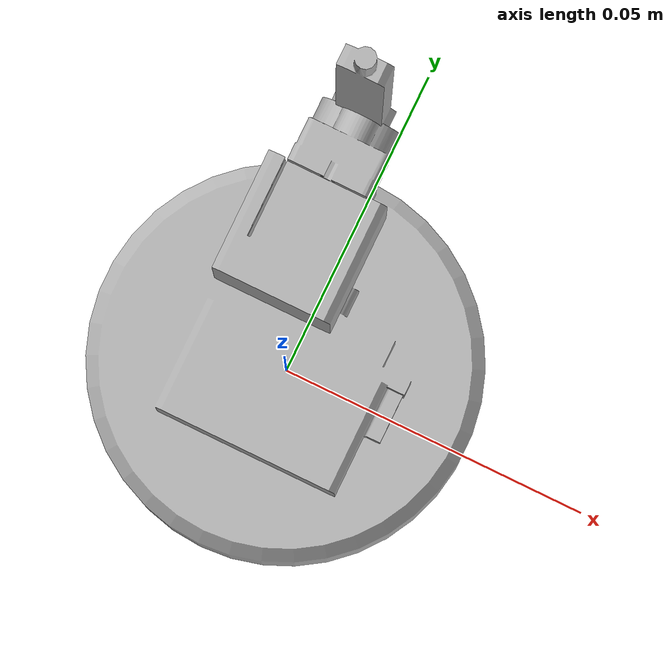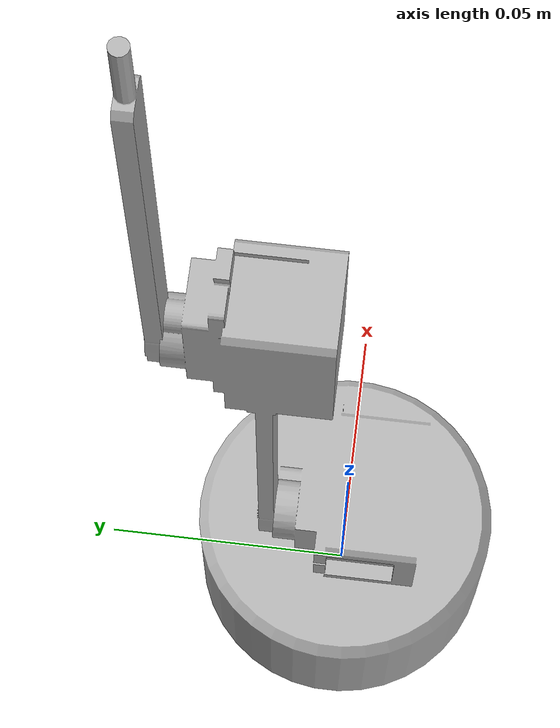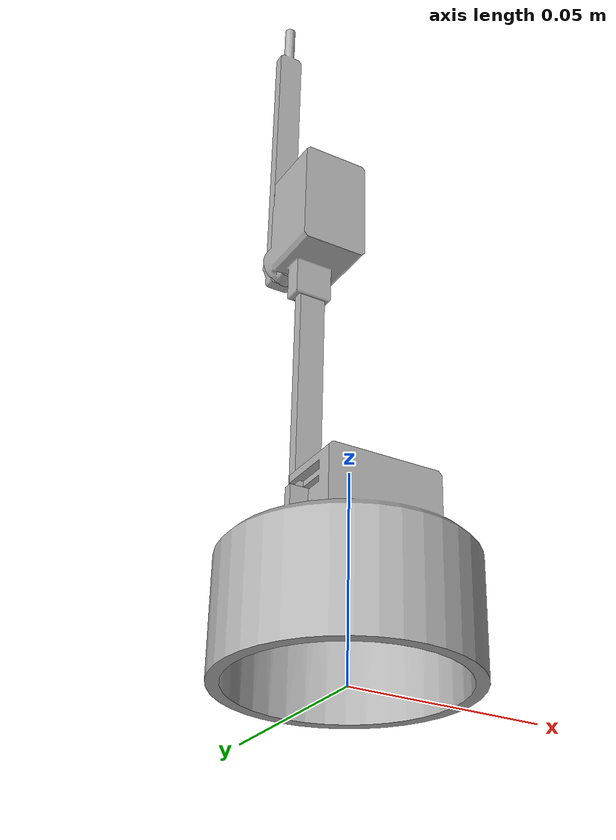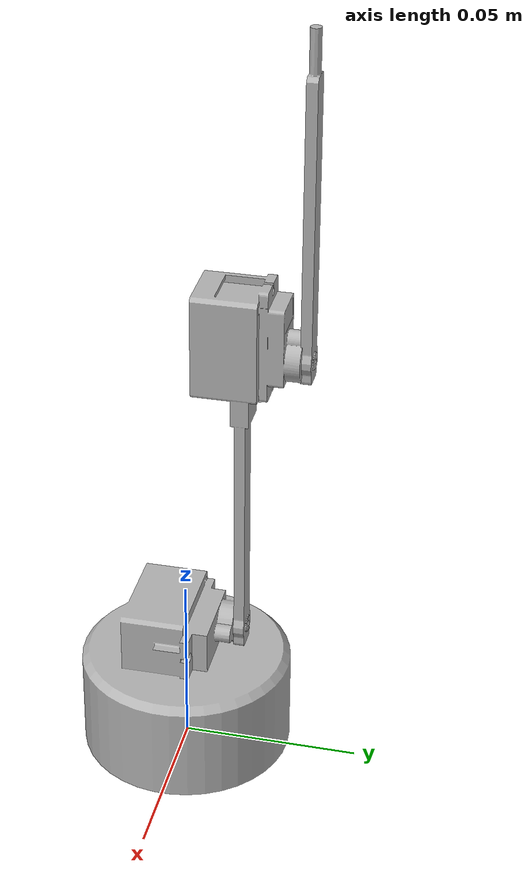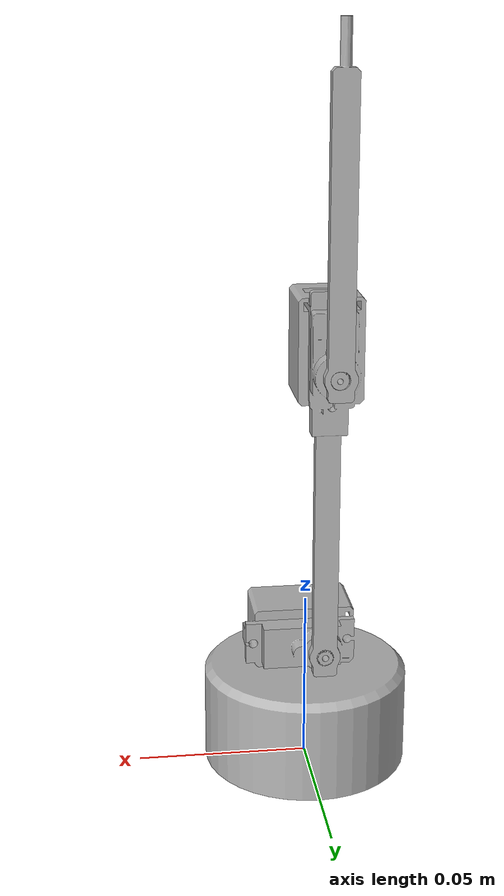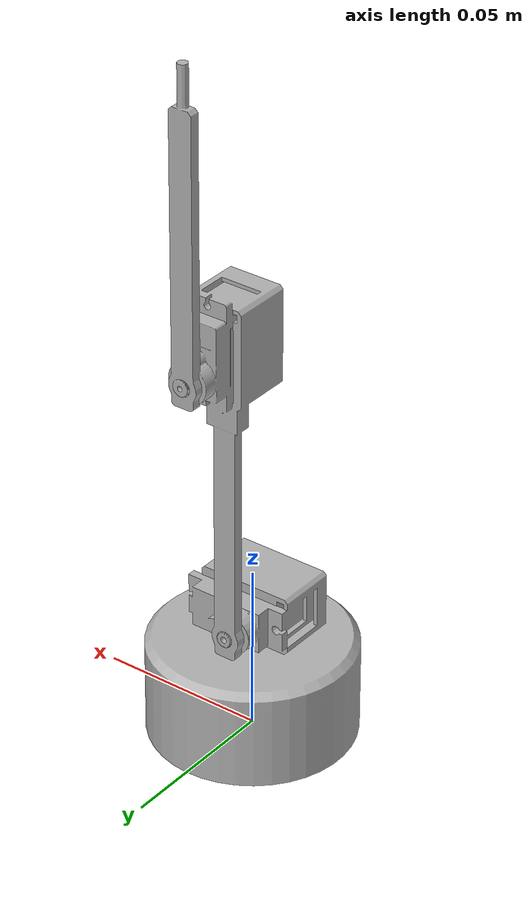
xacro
<?xml version="1.0" encoding="utf-8"?>

<robot name="r2b_description" xmlns:xacro="http://www.ros.org/wiki/xacro">

  <link name='world'/>

  <link
    name="base_link">
    <inertial>
      <origin
        xyz="0.00073068 -0.0010739 0.025055"
        rpy="0 0 0" />
      <mass
        value="0.038209" />
      <inertia
        ixx="1.2081E-05"
        ixy="1.4586E-08"
        ixz="-4.3058E-09"
        iyy="1.2226E-05"
        iyz="-2.1753E-08"
        izz="1.8632E-05" />
    </inertial>
    <visual>
      <origin
        xyz="0 0 0"
        rpy="0 0 0" />
      <geometry>
        <mesh
          filename="package://r2b_description/meshes/base_link.STL" />
      </geometry>
      <material
        name="">
        <color
          rgba="0.69804 0.69804 0.69804 1" />
      </material>
    </visual>
    <collision>
      <origin
        xyz="0 0 0"
        rpy="0 0 0" />
      <geometry>
        <mesh
          filename="package://r2b_description/meshes/base_link.STL" />
      </geometry>
    </collision>
  </link>

  <joint name="fixed" type="fixed">
		<origin xyz="0.0 0.0 0.0" rpy="0.0 0.0 0.0"/>
		<parent link="world"/>
		<child link="base_link"/>
	</joint>

  <link
    name="link_1">
    <inertial>
      <origin
        xyz="0.084852 0.0002295 -0.0020854"
        rpy="3.1416 0 0" />
      <mass
        value="0.016659" />
      <inertia
        ixx="9.6101E-07"
        ixy="-3.0223E-09"
        ixz="5.7382E-08"
        iyy="2.783E-06"
        iyz="7.0089E-10"
        izz="2.4887E-06" />
    </inertial>
    <visual>
      <origin
        xyz="0 0 0"
        rpy="3.1416 0 0" />
      <geometry>
        <mesh
          filename="package://r2b_description/meshes/link_1.STL" />
      </geometry>
      <material
        name="">
        <color
          rgba="0.69804 0.69804 0.69804 1" />
      </material>
    </visual>
    <collision>
      <origin
        xyz="0 0 0"
        rpy="3.1416 0 0" />
      <geometry>
        <mesh
          filename="package://r2b_description/meshes/link_1.STL" />
      </geometry>
    </collision>
  </link>

  <joint
    name="link_1_jnt"
    type="revolute">
    <origin
      xyz="-0.00328 0.01745 0.03878"
      rpy="1.5708 -1.5708 0" />
    <parent
      link="base_link" />
    <child
      link="link_1" />
    <axis
      xyz="0 0 -1" />
    <limit
      lower="-1.5708"
      upper="1.5708"
      effort="2"
      velocity="2" />
    <dynamics
      damping="0.3"
      friction="0.4" />
  </joint>

  <link
    name="link_2">
    <inertial>
      <origin
        xyz="0.03942 -1.3921E-16 -0.0016"
        rpy="0 0 0" />
      <mass
        value="0.0020624" />
      <inertia
        ixx="1.0046E-08"
        ixy="4.8513E-21"
        ixz="1.8495E-20"
        iyy="1.3592E-06"
        iyz="-1.8314E-15"
        izz="1.3662E-06" />
    </inertial>
    <visual>
      <origin
        xyz="0 0 0"
        rpy="0 0 0" />
      <geometry>
        <mesh
          filename="package://r2b_description/meshes/link_2.STL" />
      </geometry>
      <material
        name="">
        <color
          rgba="0.69804 0.69804 0.69804 1" />
      </material>
    </visual>
    <collision>
      <origin
        xyz="0 0 0"
        rpy="0 0 0" />
      <geometry>
        <mesh
          filename="package://r2b_description/meshes/link_2.STL" />
      </geometry>
    </collision>
  </link>

  <joint
    name="link_2_jnt"
    type="revolute">
    <origin
      xyz="0.087773 0.00019421 -0.014"
      rpy="0 0 0" />
    <parent
      link="link_1" />
    <child
      link="link_2" />
    <axis
      xyz="0 0 -1" />
    <limit
      lower="-3.1416"
      upper="3.1416"
      effort="2"
      velocity="2" />
    <dynamics
      damping="0.3"
      friction="0.4" />
  </joint>

  <link name="ee_link">
    <inertial>
      <origin xyz="0 0 0" rpy="0 0 0"/>
      <mass value="0.001"/>
      <inertia ixx="0.0" ixy="0.0" ixz="0.0" iyy="0.0" iyz="0.0" izz="0.0"/>
    </inertial>
  </link>

  <joint
    name="ee_link_jnt"
    type="fixed">
    <origin
      xyz="0.091 0 -0.0016"
      rpy="0 0 0" />
    <parent
      link="link_2" />
    <child
      link="ee_link" />
  </joint>

  <xacro:include filename="$(find r2b_description)/urdf/r2b_gazebo.xacro"/>
  <xacro:revolute_controllers/>

</robot>
